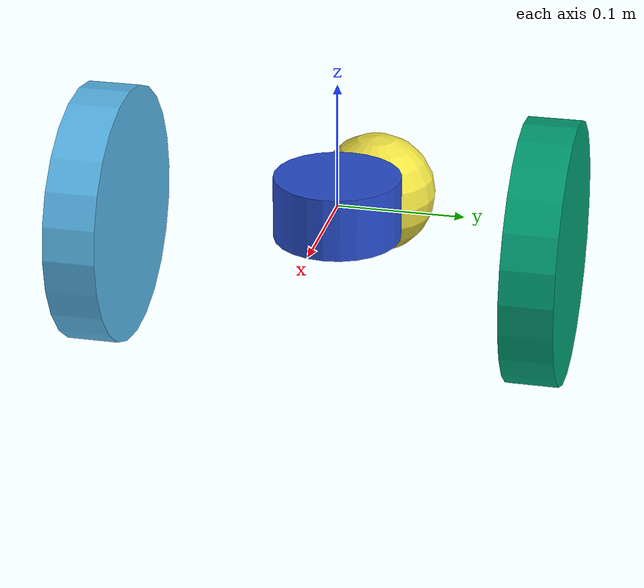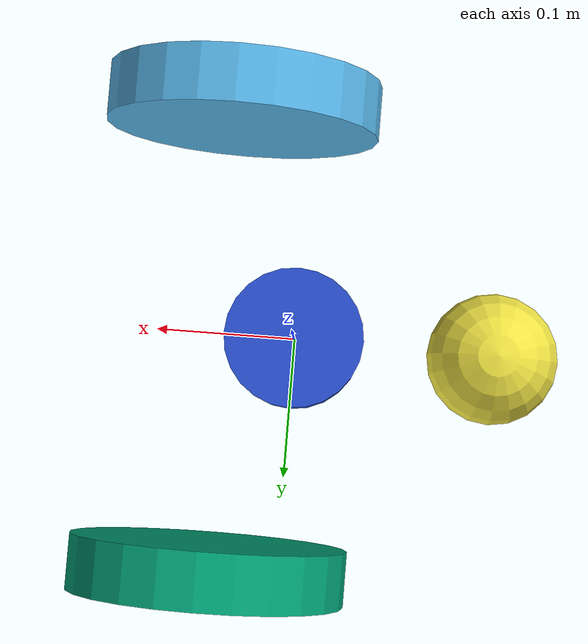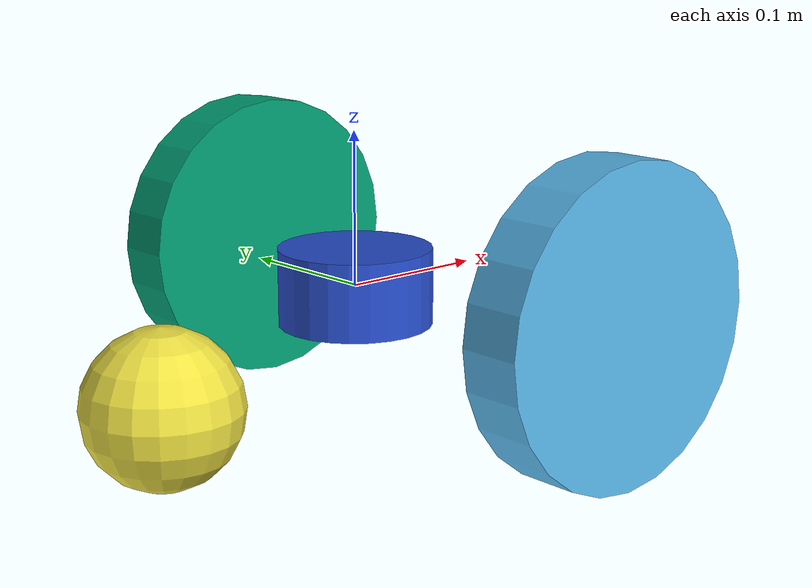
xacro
<?xml version="1.0" ?>
<robot name="robot" xmlns:xacro="http://www.ros.org/wiki/xacro">
<link name="base_link">
<inertial>
<mass value="5"/>
<origin rpy="0 0 0" xyz="0 0 0"/>
<inertia ixx="0.0395416666667" ixy="0" ixz="0" iyy="0.106208333333"
iyz="0" izz="0.106208333333"/>
</inertial>
<visual>
<origin rpy="0 0 0" xyz="0 0 0"/>
<geometry>
<cylinder length="0.05" radius="0.05"/>
</geometry>
<material name="blue"/>
</visual>
<collision>
<geometry>
<cylinder length="0.05" radius="0.05"/>
</geometry>
</collision>
</link>
<link name="link_right_wheel">
<inertial>
<mass value="0.2"/>
<origin rpy="0 1.5707 1.5707" xyz="0 0 0"/>
<inertia ixx="0.000526666666667" ixy="0" ixz="0"
iyy="0.000526666666667" iyz="0" izz="0.001"/>
</inertial>
<collision name="link_right_wheel_collision">
<origin rpy="0 1.5707 1.5707" xyz="0 0 0"/>
<geometry>
<cylinder length="0.04" radius="0.1"/>
</geometry>
</collision>
<visual name="link_right_wheel_visual">
<origin rpy="0 1.5707 1.5707" xyz="0 0 0"/>
<geometry>
<cylinder length="0.04" radius="0.1"/>
</geometry>
</visual>
</link>
<joint name="joint_right_wheel" type="continuous">
<origin rpy="0 0 0" xyz="0.05 -0.17 0"/><child link="link_right_wheel"/>
<parent link="base_link"/>
<axis rpy="0 0 0" xyz="0 1 0"/>
<limit effort="10000" velocity="1000"/>
<joint_properties damping="1.0" friction="1.0"/>
</joint>
<link name="link_left_wheel">
<inertial>
<mass value="0.2"/>
<origin rpy="0 1.5707 1.5707" xyz="0 0 0"/>
<inertia ixx="0.000526666666667" ixy="0" ixz="0"
iyy="0.000526666666667" iyz="0" izz="0.001"/>
</inertial>
<collision name="link_left_wheel_collision">
<origin rpy="0 1.5707 1.5707" xyz="0 0 0"/>
<geometry>
<cylinder length="0.04" radius="0.1"/>
</geometry>
</collision>
<visual name="link_left_wheel_visual">
<origin rpy="0 1.5707 1.5707" xyz="0 0 0"/>
<geometry>
<cylinder length="0.04" radius="0.1"/>
</geometry>
</visual>
</link>
<joint name="joint_left_wheel" type="continuous">
<origin rpy="0 0 0" xyz="0.05 0.17 0"/>
<child link="link_left_wheel"/>
<parent link="base_link"/>
<axis rpy="0 0 0" xyz="0 1 0"/>
<limit effort="10000" velocity="1000"/>
<joint_properties damping="1.0" friction="1.0"/>
</joint>
<link name="caster_front">
<inertial>
<mass value="0.2"/>
<origin rpy="0 0 0" xyz="0 0 0"/>
<inertia ixx="0.001" ixy="0" ixz="0" iyy="0.001" iyz="0" izz="0.001"/>
</inertial>
<collision>
<origin rpy=" 0 0 0" xyz="-0.2 0 -0.05"/>
<geometry>
<sphere radius="0.05"/>
</geometry><surface>
<friction>
<ode>
<mu>0</mu>
<mu2>0</mu2>
<slip1>1.0</slip1>
<slip2>1.0</slip2>
</ode>
</friction>
</surface>
</collision>
<visual>
<origin rpy=" 0 0 0" xyz="-0.2 0 -0.05"/>
<geometry>
<sphere radius="0.05"/>
</geometry>
</visual>
</link>
<joint name="caster_to_base" type="fixed">
<origin rpy="0 0 0" xyz="0.05 0 0"/>
<child link="caster_front"/>
<parent link="base_link"/>
</joint>
</robot>
